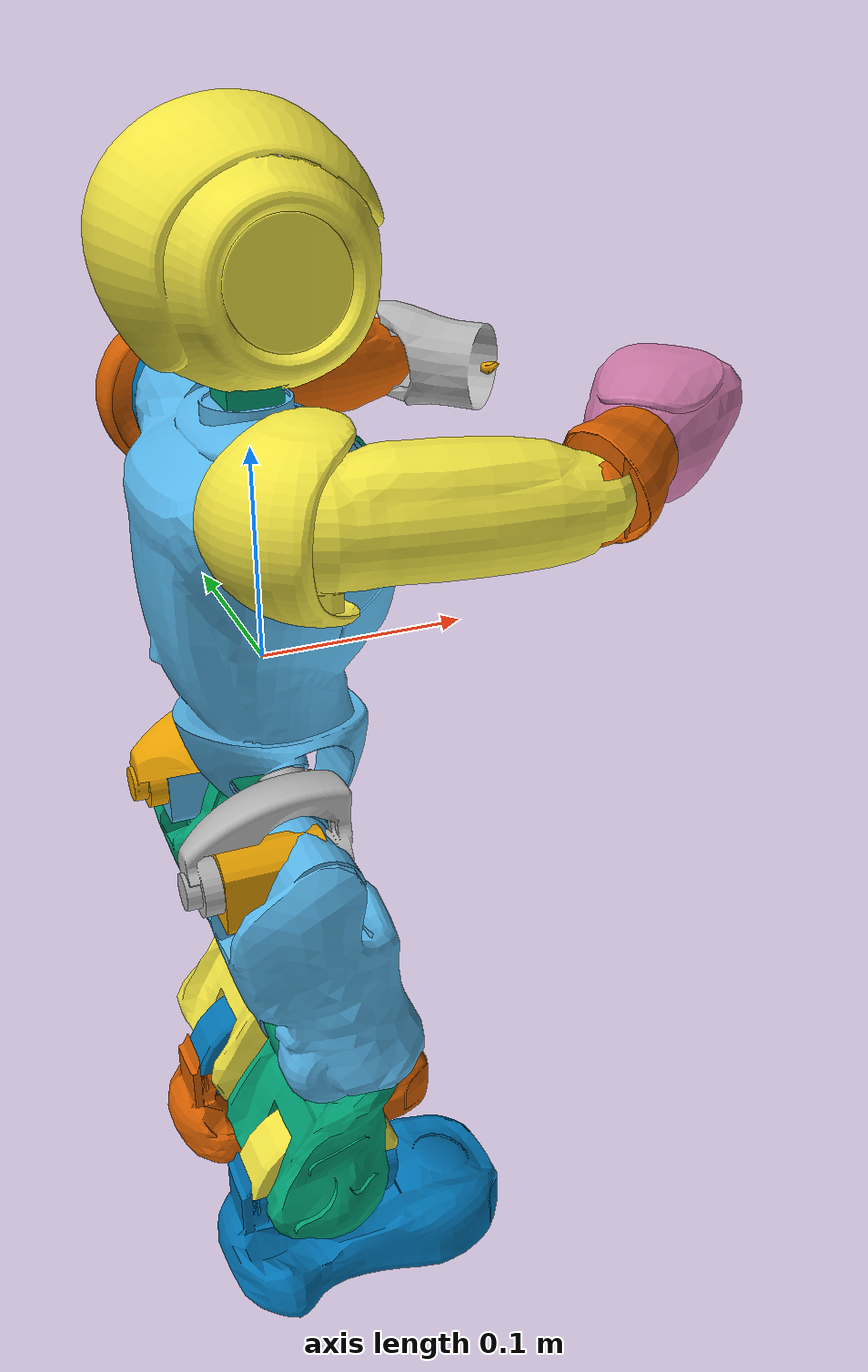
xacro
<?xml version="1.0" ?>
<robot name="NaoH25V50" xmlns:xacro="http://www.ros.org/wiki/xacro">
	<xacro:include filename="nao_visual_collisions.xacro"/>
	<xacro:include filename="nao_torso.xacro"/>
	<xacro:include filename="nao_head.xacro"/>
	<xacro:include filename="nao_arms.xacro"/>
	<xacro:include filename="nao_legs.xacro"/>
</robot>

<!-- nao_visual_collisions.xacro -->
<robot xmlns:xacro="http://www.ros.org/wiki/xacro">
	<xacro:property name="PI_2" value="1.57079632679"/>
	<xacro:property name="meshes_installed" value="true"/>
	<xacro:macro name="insert_visu_LThigh">
		<xacro:unless value="${meshes_installed}">
			<visual>
				<geometry>
					<cylinder length="0.1" radius="0.015"/>
				</geometry>
				<origin rpy="0 0 0" xyz="0 0 -0.05"/>
				<material name="LightGrey"/>
			</visual>
			<collision>
				<geometry>
					<cylinder length="0.1" radius="0.015"/>
				</geometry>
				<origin rpy="0 0 0" xyz="0 0 -0.05"/>
			</collision>
		</xacro:unless>
		<xacro:if value="${meshes_installed}">
			<visual>
				<geometry>
					<mesh filename="../meshes/V40/LHipPitch.dae" scale="0.1 0.1 0.1"/>
				</geometry>
				<origin rpy="0 0 0" xyz="0 0 0"/>
			</visual>
			<collision>
				<geometry>
					<mesh filename="../meshes/V40/LHipPitch_0.10.stl" scale="0.1 0.1 0.1"/>
				</geometry>
				<origin rpy="0 0 0" xyz="0 0 0"/>
			</collision>
		</xacro:if>
	</xacro:macro>
	<xacro:macro name="insert_visu_RFinger13_link">
		<xacro:unless value="${meshes_installed}"/>
		<xacro:if value="${meshes_installed}">
			<visual>
				<geometry>
					<mesh filename="../meshes/V40/RFinger13.dae" scale="0.1 0.1 0.1"/>
				</geometry>
				<origin rpy="0 0 0" xyz="0 0 0"/>
			</visual>
			<collision>
				<geometry>
					<mesh filename="../meshes/V40/RFinger13_0.10.stl" scale="0.1 0.1 0.1"/>
				</geometry>
				<origin rpy="0 0 0" xyz="0 0 0"/>
			</collision>
		</xacro:if>
	</xacro:macro>
	<xacro:macro name="insert_visu_RThigh">
		<xacro:unless value="${meshes_installed}">
			<visual>
				<geometry>
					<cylinder length="0.1" radius="0.015"/>
				</geometry>
				<origin rpy="0 0 0" xyz="0 0 -0.05"/>
				<material name="LightGrey"/>
			</visual>
			<collision>
				<geometry>
					<cylinder length="0.1" radius="0.015"/>
				</geometry>
				<origin rpy="0 0 0" xyz="0 0 -0.05"/>
			</collision>
		</xacro:unless>
		<xacro:if value="${meshes_installed}">
			<visual>
				<geometry>
					<mesh filename="../meshes/V40/RHipPitch.dae" scale="0.1 0.1 0.1"/>
				</geometry>
				<origin rpy="0 0 0" xyz="0 0 0"/>
			</visual>
			<collision>
				<geometry>
					<mesh filename="../meshes/V40/RHipPitch_0.10.stl" scale="0.1 0.1 0.1"/>
				</geometry>
				<origin rpy="0 0 0" xyz="0 0 0"/>
			</collision>
		</xacro:if>
	</xacro:macro>
	<xacro:macro name="insert_visu_RFinger12_link">
		<xacro:unless value="${meshes_installed}"/>
		<xacro:if value="${meshes_installed}">
			<visual>
				<geometry>
					<mesh filename="../meshes/V40/RFinger12.dae" scale="0.1 0.1 0.1"/>
				</geometry>
				<origin rpy="0 0 0" xyz="0 0 0"/>
			</visual>
			<collision>
				<geometry>
					<mesh filename="../meshes/V40/RFinger12_0.10.stl" scale="0.1 0.1 0.1"/>
				</geometry>
				<origin rpy="0 0 0" xyz="0 0 0"/>
			</collision>
		</xacro:if>
	</xacro:macro>
	<xacro:macro name="insert_visu_LFinger21_link">
		<xacro:unless value="${meshes_installed}"/>
		<xacro:if value="${meshes_installed}">
			<visual>
				<geometry>
					<mesh filename="../meshes/V40/LFinger21.dae" scale="0.1 0.1 0.1"/>
				</geometry>
				<origin rpy="0 0 0" xyz="0 0 0"/>
			</visual>
			<collision>
				<geometry>
					<mesh filename="../meshes/V40/LFinger21_0.10.stl" scale="0.1 0.1 0.1"/>
				</geometry>
				<origin rpy="0 0 0" xyz="0 0 0"/>
			</collision>
		</xacro:if>
	</xacro:macro>
	<xacro:macro name="insert_visu_LFinger13_link">
		<xacro:unless value="${meshes_installed}"/>
		<xacro:if value="${meshes_installed}">
			<visual>
				<geometry>
					<mesh filename="../meshes/V40/LFinger13.dae" scale="0.1 0.1 0.1"/>
				</geometry>
				<origin rpy="0 0 0" xyz="0 0 0"/>
			</visual>
			<collision>
				<geometry>
					<mesh filename="../meshes/V40/LFinger13_0.10.stl" scale="0.1 0.1 0.1"/>
				</geometry>
				<origin rpy="0 0 0" xyz="0 0 0"/>
			</collision>
		</xacro:if>
	</xacro:macro>
	<xacro:macro name="insert_visu_LThumb1_link">
		<xacro:unless value="${meshes_installed}"/>
		<xacro:if value="${meshes_installed}">
			<visual>
				<geometry>
					<mesh filename="../meshes/V40/LThumb1.dae" scale="0.1 0.1 0.1"/>
				</geometry>
				<origin rpy="0 0 0" xyz="0 0 0"/>
			</visual>
			<collision>
				<geometry>
					<mesh filename="../meshes/V40/LThumb1_0.10.stl" scale="0.1 0.1 0.1"/>
				</geometry>
				<origin rpy="0 0 0" xyz="0 0 0"/>
			</collision>
		</xacro:if>
	</xacro:macro>
	<xacro:macro name="insert_visu_LFinger11_link">
		<xacro:unless value="${meshes_installed}"/>
		<xacro:if value="${meshes_installed}">
			<visual>
				<geometry>
					<mesh filename="../meshes/V40/LFinger11.dae" scale="0.1 0.1 0.1"/>
				</geometry>
				<origin rpy="0 0 0" xyz="0 0 0"/>
			</visual>
			<collision>
				<geometry>
					<mesh filename="../meshes/V40/LFinger11_0.10.stl" scale="0.1 0.1 0.1"/>
				</geometry>
				<origin rpy="0 0 0" xyz="0 0 0"/>
			</collision>
		</xacro:if>
	</xacro:macro>
	<xacro:macro name="insert_visu_RFinger22_link">
		<xacro:unless value="${meshes_installed}"/>
		<xacro:if value="${meshes_installed}">
			<visual>
				<geometry>
					<mesh filename="../meshes/V40/RFinger22.dae" scale="0.1 0.1 0.1"/>
				</geometry>
				<origin rpy="0 0 0" xyz="0 0 0"/>
			</visual>
			<collision>
				<geometry>
					<mesh filename="../meshes/V40/RFinger22_0.10.stl" scale="0.1 0.1 0.1"/>
				</geometry>
				<origin rpy="0 0 0" xyz="0 0 0"/>
			</collision>
		</xacro:if>
	</xacro:macro>
	<xacro:macro name="insert_visu_Head">
		<xacro:unless value="${meshes_installed}">
			<visual>
				<geometry>
					<cylinder length="0.14" radius="0.04"/>
				</geometry>
				<origin rpy="1.57079632679 0 0" xyz="0 0 0.058"/>
				<material name="LightGrey"/>
			</visual>
			<collision>
				<geometry>
					<cylinder length="0.14" radius="0.04"/>
				</geometry>
				<origin rpy="1.57079632679 0 0" xyz="0 0 0.058"/>
			</collision>
		</xacro:unless>
		<xacro:if value="${meshes_installed}">
			<visual>
				<geometry>
					<mesh filename="../meshes/V40/HeadPitch.dae" scale="0.1 0.1 0.1"/>
				</geometry>
				<origin rpy="0 0 0" xyz="0 0 0"/>
			</visual>
			<collision>
				<geometry>
					<mesh filename="../meshes/V40/HeadPitch_0.10.stl" scale="0.1 0.1 0.1"/>
				</geometry>
				<origin rpy="0 0 0" xyz="0 0 0"/>
			</collision>
		</xacro:if>
	</xacro:macro>
	<xacro:macro name="insert_visu_LFinger22_link">
		<xacro:unless value="${meshes_installed}"/>
		<xacro:if value="${meshes_installed}">
			<visual>
				<geometry>
					<mesh filename="../meshes/V40/LFinger22.dae" scale="0.1 0.1 0.1"/>
				</geometry>
				<origin rpy="0 0 0" xyz="0 0 0"/>
			</visual>
			<collision>
				<geometry>
					<mesh filename="../meshes/V40/LFinger22_0.10.stl" scale="0.1 0.1 0.1"/>
				</geometry>
				<origin rpy="0 0 0" xyz="0 0 0"/>
			</collision>
		</xacro:if>
	</xacro:macro>
	<xacro:macro name="insert_visu_RFinger21_link">
		<xacro:unless value="${meshes_installed}"/>
		<xacro:if value="${meshes_installed}">
			<visual>
				<geometry>
					<mesh filename="../meshes/V40/RFinger21.dae" scale="0.1 0.1 0.1"/>
				</geometry>
				<origin rpy="0 0 0" xyz="0 0 0"/>
			</visual>
			<collision>
				<geometry>
					<mesh filename="../meshes/V40/RFinger21_0.10.stl" scale="0.1 0.1 0.1"/>
				</geometry>
				<origin rpy="0 0 0" xyz="0 0 0"/>
			</collision>
		</xacro:if>
	</xacro:macro>
	<xacro:macro name="insert_visu_LBicep">
		<xacro:unless value="${meshes_installed}">
			<visual>
				<geometry>
					<cylinder length="0.09" radius="0.015"/>
				</geometry>
				<origin rpy="1.57079632679 0 1.57079632679" xyz="0.045 0 0"/>
				<material name="LightGrey"/>
			</visual>
			<collision>
				<geometry>
					<cylinder length="0.09" radius="0.015"/>
				</geometry>
				<origin rpy="1.57079632679 0 1.57079632679" xyz="0.045 0 0"/>
			</collision>
		</xacro:unless>
		<xacro:if value="${meshes_installed}">
			<visual>
				<geometry>
					<mesh filename="../meshes/V40/LShoulderRoll.dae" scale="0.1 0.1 0.1"/>
				</geometry>
				<origin rpy="0 0 0" xyz="0 0 0"/>
			</visual>
			<collision>
				<geometry>
					<mesh filename="../meshes/V40/LShoulderRoll_0.10.stl" scale="0.1 0.1 0.1"/>
				</geometry>
				<origin rpy="0 0 0" xyz="0 0 0"/>
			</collision>
		</xacro:if>
	</xacro:macro>
	<xacro:macro name="insert_visu_RThumb1_link">
		<xacro:unless value="${meshes_installed}"/>
		<xacro:if value="${meshes_installed}">
			<visual>
				<geometry>
					<mesh filename="../meshes/V40/RThumb1.dae" scale="0.1 0.1 0.1"/>
				</geometry>
				<origin rpy="0 0 0" xyz="0 0 0"/>
			</visual>
			<collision>
				<geometry>
					<mesh filename="../meshes/V40/RThumb1_0.10.stl" scale="0.1 0.1 0.1"/>
				</geometry>
				<origin rpy="0 0 0" xyz="0 0 0"/>
			</collision>
		</xacro:if>
	</xacro:macro>
	<xacro:macro name="insert_visu_RThumb2_link">
		<xacro:unless value="${meshes_installed}"/>
		<xacro:if value="${meshes_installed}">
			<visual>
				<geometry>
					<mesh filename="../meshes/V40/RThumb2.dae" scale="0.1 0.1 0.1"/>
				</geometry>
				<origin rpy="0 0 0" xyz="0 0 0"/>
			</visual>
			<collision>
				<geometry>
					<mesh filename="../meshes/V40/RThumb2_0.10.stl" scale="0.1 0.1 0.1"/>
				</geometry>
				<origin rpy="0 0 0" xyz="0 0 0"/>
			</collision>
		</xacro:if>
	</xacro:macro>
	<xacro:macro name="insert_visu_r_wrist">
		<xacro:unless value="${meshes_installed}">
			<visual>
				<geometry>
					<cylinder length="0.058" radius="0.015"/>
				</geometry>
				<origin rpy="1.57079632679 0 1.57079632679" xyz="0.029 0 0"/>
				<material name="LightGrey"/>
			</visual>
			<collision>
				<geometry>
					<cylinder length="0.058" radius="0.015"/>
				</geometry>
				<origin rpy="1.57079632679 0 1.57079632679" xyz="0.029 0 0"/>
			</collision>
		</xacro:unless>
		<xacro:if value="${meshes_installed}">
			<visual>
				<geometry>
					<mesh filename="../meshes/V40/RWristYaw.dae" scale="0.1 0.1 0.1"/>
				</geometry>
				<origin rpy="0 0 0" xyz="0 0 0"/>
			</visual>
			<collision>
				<geometry>
					<mesh filename="../meshes/V40/RWristYaw_0.10.stl" scale="0.1 0.1 0.1"/>
				</geometry>
				<origin rpy="0 0 0" xyz="0 0 0"/>
			</collision>
		</xacro:if>
	</xacro:macro>
	<xacro:macro name="insert_visu_LForeArm">
		<xacro:unless value="${meshes_installed}">
			<visual>
				<geometry>
					<cylinder length="0.05065" radius="0.015"/>
				</geometry>
				<origin rpy="1.57079632679 0 1.57079632679" xyz="0.025325 0 0"/>
				<material name="LightGrey"/>
			</visual>
			<collision>
				<geometry>
					<cylinder length="0.05065" radius="0.015"/>
				</geometry>
				<origin rpy="1.57079632679 0 1.57079632679" xyz="0.025325 0 0"/>
			</collision>
		</xacro:unless>
		<xacro:if value="${meshes_installed}">
			<visual>
				<geometry>
					<mesh filename="../meshes/V40/LElbowRoll.dae" scale="0.1 0.1 0.1"/>
				</geometry>
				<origin rpy="0 0 0" xyz="0 0 0"/>
			</visual>
			<collision>
				<geometry>
					<mesh filename="../meshes/V40/LElbowRoll_0.10.stl" scale="0.1 0.1 0.1"/>
				</geometry>
				<origin rpy="0 0 0" xyz="0 0 0"/>
			</collision>
		</xacro:if>
	</xacro:macro>
	<xacro:macro name="insert_visu_RHip">
		<xacro:unless value="${meshes_installed}"/>
		<xacro:if value="${meshes_installed}">
			<visual>
				<geometry>
					<mesh filename="../meshes/V40/RHipRoll.dae" scale="0.1 0.1 0.1"/>
				</geometry>
				<origin rpy="0 0 0" xyz="0 0 0"/>
			</visual>
			<collision>
				<geometry>
					<mesh filename="../meshes/V40/RHipRoll_0.10.stl" scale="0.1 0.1 0.1"/>
				</geometry>
				<origin rpy="0 0 0" xyz="0 0 0"/>
			</collision>
		</xacro:if>
	</xacro:macro>
	<xacro:macro name="insert_visu_LThumb2_link">
		<xacro:unless value="${meshes_installed}"/>
		<xacro:if value="${meshes_installed}">
			<visual>
				<geometry>
					<mesh filename="../meshes/V40/LThumb2.dae" scale="0.1 0.1 0.1"/>
				</geometry>
				<origin rpy="0 0 0" xyz="0 0 0"/>
			</visual>
			<collision>
				<geometry>
					<mesh filename="../meshes/V40/LThumb2_0.10.stl" scale="0.1 0.1 0.1"/>
				</geometry>
				<origin rpy="0 0 0" xyz="0 0 0"/>
			</collision>
		</xacro:if>
	</xacro:macro>
	<xacro:macro name="insert_visu_LFinger12_link">
		<xacro:unless value="${meshes_installed}"/>
		<xacro:if value="${meshes_installed}">
			<visual>
				<geometry>
					<mesh filename="../meshes/V40/LFinger12.dae" scale="0.1 0.1 0.1"/>
				</geometry>
				<origin rpy="0 0 0" xyz="0 0 0"/>
			</visual>
			<collision>
				<geometry>
					<mesh filename="../meshes/V40/LFinger12_0.10.stl" scale="0.1 0.1 0.1"/>
				</geometry>
				<origin rpy="0 0 0" xyz="0 0 0"/>
			</collision>
		</xacro:if>
	</xacro:macro>
	<xacro:macro name="insert_visu_RTibia">
		<xacro:unless value="${meshes_installed}">
			<visual>
				<geometry>
					<cylinder length="0.1" radius="0.015"/>
				</geometry>
				<origin rpy="0 0 0" xyz="0 0 -0.05"/>
				<material name="LightGrey"/>
			</visual>
			<collision>
				<geometry>
					<cylinder length="0.1" radius="0.015"/>
				</geometry>
				<origin rpy="0 0 0" xyz="0 0 -0.05"/>
			</collision>
		</xacro:unless>
		<xacro:if value="${meshes_installed}">
			<visual>
				<geometry>
					<mesh filename="../meshes/V40/RKneePitch.dae" scale="0.1 0.1 0.1"/>
				</geometry>
				<origin rpy="0 0 0" xyz="0 0 0"/>
			</visual>
			<collision>
				<geometry>
					<mesh filename="../meshes/V40/RKneePitch_0.10.stl" scale="0.1 0.1 0.1"/>
				</geometry>
				<origin rpy="0 0 0" xyz="0 0 0"/>
			</collision>
		</xacro:if>
	</xacro:macro>
	<xacro:macro name="insert_visu_RShoulder">
		<xacro:unless value="${meshes_installed}"/>
		<xacro:if value="${meshes_installed}">
			<visual>
				<geometry>
					<mesh filename="../meshes/V40/RShoulderPitch.dae" scale="0.1 0.1 0.1"/>
				</geometry>
				<origin rpy="0 0 0" xyz="0 0 0"/>
			</visual>
			<collision>
				<geometry>
					<mesh filename="../meshes/V40/RShoulderPitch_0.10.stl" scale="0.1 0.1 0.1"/>
				</geometry>
				<origin rpy="0 0 0" xyz="0 0 0"/>
			</collision>
		</xacro:if>
	</xacro:macro>
	<xacro:macro name="insert_visu_LHip">
		<xacro:unless value="${meshes_installed}"/>
		<xacro:if value="${meshes_installed}">
			<visual>
				<geometry>
					<mesh filename="../meshes/V40/LHipRoll.dae" scale="0.1 0.1 0.1"/>
				</geometry>
				<origin rpy="0 0 0" xyz="0 0 0"/>
			</visual>
			<collision>
				<geometry>
					<mesh filename="../meshes/V40/LHipRoll_0.10.stl" scale="0.1 0.1 0.1"/>
				</geometry>
				<origin rpy="0 0 0" xyz="0 0 0"/>
			</collision>
		</xacro:if>
	</xacro:macro>
	<xacro:macro name="insert_visu_RFinger23_link">
		<xacro:unless value="${meshes_installed}"/>
		<xacro:if value="${meshes_installed}">
			<visual>
				<geometry>
					<mesh filename="../meshes/V40/RFinger23.dae" scale="0.1 0.1 0.1"/>
				</geometry>
				<origin rpy="0 0 0" xyz="0 0 0"/>
			</visual>
			<collision>
				<geometry>
					<mesh filename="../meshes/V40/RFinger23_0.10.stl" scale="0.1 0.1 0.1"/>
				</geometry>
				<origin rpy="0 0 0" xyz="0 0 0"/>
			</collision>
		</xacro:if>
	</xacro:macro>
	<xacro:macro name="insert_visu_LHand">
		<xacro:unless value="${meshes_installed}">
			<visual>
				<geometry>
					<cylinder length="0.058" radius="0.015"/>
				</geometry>
				<origin rpy="1.57079632679 0 1.57079632679" xyz="0.029 0 0"/>
				<material name="LightGrey"/>
			</visual>
			<collision>
				<geometry>
					<cylinder length="0.058" radius="0.015"/>
				</geometry>
				<origin rpy="1.57079632679 0 1.57079632679" xyz="0.029 0 0"/>
			</collision>
		</xacro:unless>
		<xacro:if value="${meshes_installed}">
			<visual>
				<geometry>
					<mesh filename="../meshes/V40/LWristYaw.dae" scale="0.1 0.1 0.1"/>
				</geometry>
				<origin rpy="0 0 0" xyz="0 0 0"/>
			</visual>
			<collision>
				<geometry>
					<mesh filename="../meshes/V40/LWristYaw_0.10.stl" scale="0.1 0.1 0.1"/>
				</geometry>
				<origin rpy="0 0 0" xyz="0 0 0"/>
			</collision>
		</xacro:if>
	</xacro:macro>
	<xacro:macro name="insert_visu_RBicep">
		<xacro:unless value="${meshes_installed}">
			<visual>
				<geometry>
					<cylinder length="0.09" radius="0.015"/>
				</geometry>
				<origin rpy="1.57079632679 0 1.57079632679" xyz="0.045 0 0"/>
				<material name="LightGrey"/>
			</visual>
			<collision>
				<geometry>
					<cylinder length="0.09" radius="0.015"/>
				</geometry>
				<origin rpy="1.57079632679 0 1.57079632679" xyz="0.045 0 0"/>
			</collision>
		</xacro:unless>
		<xacro:if value="${meshes_installed}">
			<visual>
				<geometry>
					<mesh filename="../meshes/V40/RShoulderRoll.dae" scale="0.1 0.1 0.1"/>
				</geometry>
				<origin rpy="0 0 0" xyz="0 0 0"/>
			</visual>
			<collision>
				<geometry>
					<mesh filename="../meshes/V40/RShoulderRoll_0.10.stl" scale="0.1 0.1 0.1"/>
				</geometry>
				<origin rpy="0 0 0" xyz="0 0 0"/>
			</collision>
		</xacro:if>
	</xacro:macro>
	<xacro:macro name="insert_visu_RFinger11_link">
		<xacro:unless value="${meshes_installed}"/>
		<xacro:if value="${meshes_installed}">
			<visual>
				<geometry>
					<mesh filename="../meshes/V40/RFinger11.dae" scale="0.1 0.1 0.1"/>
				</geometry>
				<origin rpy="0 0 0" xyz="0 0 0"/>
			</visual>
			<collision>
				<geometry>
					<mesh filename="../meshes/V40/RFinger11_0.10.stl" scale="0.1 0.1 0.1"/>
				</geometry>
				<origin rpy="0 0 0" xyz="0 0 0"/>
			</collision>
		</xacro:if>
	</xacro:macro>
	<xacro:macro name="insert_visu_LFinger23_link">
		<xacro:unless value="${meshes_installed}"/>
		<xacro:if value="${meshes_installed}">
			<visual>
				<geometry>
					<mesh filename="../meshes/V40/LFinger23.dae" scale="0.1 0.1 0.1"/>
				</geometry>
				<origin rpy="0 0 0" xyz="0 0 0"/>
			</visual>
			<collision>
				<geometry>
					<mesh filename="../meshes/V40/LFinger23_0.10.stl" scale="0.1 0.1 0.1"/>
				</geometry>
				<origin rpy="0 0 0" xyz="0 0 0"/>
			</collision>
		</xacro:if>
	</xacro:macro>
	<xacro:macro name="insert_visu_LTibia">
		<xacro:unless value="${meshes_installed}">
			<visual>
				<geometry>
					<cylinder length="0.1" radius="0.015"/>
				</geometry>
				<origin rpy="0 0 0" xyz="0 0 -0.05"/>
				<material name="LightGrey"/>
			</visual>
			<collision>
				<geometry>
					<cylinder length="0.1" radius="0.015"/>
				</geometry>
				<origin rpy="0 0 0" xyz="0 0 -0.05"/>
			</collision>
		</xacro:unless>
		<xacro:if value="${meshes_installed}">
			<visual>
				<geometry>
					<mesh filename="../meshes/V40/LKneePitch.dae" scale="0.1 0.1 0.1"/>
				</geometry>
				<origin rpy="0 0 0" xyz="0 0 0"/>
			</visual>
			<collision>
				<geometry>
					<mesh filename="../meshes/V40/LKneePitch_0.10.stl" scale="0.1 0.1 0.1"/>
				</geometry>
				<origin rpy="0 0 0" xyz="0 0 0"/>
			</collision>
		</xacro:if>
	</xacro:macro>
	<xacro:macro name="insert_visu_Neck">
		<xacro:unless value="${meshes_installed}"/>
		<xacro:if value="${meshes_installed}">
			<visual>
				<geometry>
					<mesh filename="../meshes/V40/HeadYaw.dae" scale="0.1 0.1 0.1"/>
				</geometry>
				<origin rpy="0 0 0" xyz="0 0 0"/>
			</visual>
			<collision>
				<geometry>
					<mesh filename="../meshes/V40/HeadYaw_0.10.stl" scale="0.1 0.1 0.1"/>
				</geometry>
				<origin rpy="0 0 0" xyz="0 0 0"/>
			</collision>
		</xacro:if>
	</xacro:macro>
	<xacro:macro name="insert_visu_LAnklePitch">
		<xacro:unless value="${meshes_installed}"/>
		<xacro:if value="${meshes_installed}">
			<visual>
				<geometry>
					<mesh filename="../meshes/V40/LAnklePitch.dae" scale="0.1 0.1 0.1"/>
				</geometry>
				<origin rpy="0 0 0" xyz="0 0 0"/>
			</visual>
			<collision>
				<geometry>
					<mesh filename="../meshes/V40/LAnklePitch_0.10.stl" scale="0.1 0.1 0.1"/>
				</geometry>
				<origin rpy="0 0 0" xyz="0 0 0"/>
			</collision>
		</xacro:if>
	</xacro:macro>
	<xacro:macro name="insert_visu_RPelvis">
		<xacro:unless value="${meshes_installed}"/>
		<xacro:if value="${meshes_installed}">
			<visual>
				<geometry>
					<mesh filename="../meshes/V40/RHipYawPitch.dae" scale="0.1 0.1 0.1"/>
				</geometry>
				<origin rpy="0 0 0" xyz="0 0 0"/>
			</visual>
			<collision>
				<geometry>
					<mesh filename="../meshes/V40/RHipYawPitch_0.10.stl" scale="0.1 0.1 0.1"/>
				</geometry>
				<origin rpy="0 0 0" xyz="0 0 0"/>
			</collision>
		</xacro:if>
	</xacro:macro>
	<xacro:macro name="insert_visu_RAnklePitch">
		<xacro:unless value="${meshes_installed}"/>
		<xacro:if value="${meshes_installed}">
			<visual>
				<geometry>
					<mesh filename="../meshes/V40/RAnklePitch.dae" scale="0.1 0.1 0.1"/>
				</geometry>
				<origin rpy="0 0 0" xyz="0 0 0"/>
			</visual>
			<collision>
				<geometry>
					<mesh filename="../meshes/V40/RAnklePitch_0.10.stl" scale="0.1 0.1 0.1"/>
				</geometry>
				<origin rpy="0 0 0" xyz="0 0 0"/>
			</collision>
		</xacro:if>
	</xacro:macro>
	<xacro:macro name="insert_visu_torso">
		<xacro:unless value="${meshes_installed}">
			<visual>
				<geometry>
					<cylinder length="0.2115" radius="0.015"/>
				</geometry>
				<origin rpy="0 0 0" xyz="0 0 0.02075"/>
				<material name="LightGrey"/>
			</visual>
			<collision>
				<geometry>
					<cylinder length="0.2115" radius="0.015"/>
				</geometry>
				<origin rpy="0 0 0" xyz="0 0 0.02075"/>
			</collision>
		</xacro:unless>
		<xacro:if value="${meshes_installed}">
			<visual>
				<geometry>
					<mesh filename="../meshes/V40/Torso.dae" scale="0.1 0.1 0.1"/>
				</geometry>
				<origin rpy="0 0 0" xyz="0 0 0"/>
			</visual>
			<collision>
				<geometry>
					<mesh filename="../meshes/V40/Torso_0.10.stl" scale="0.1 0.1 0.1"/>
				</geometry>
				<origin rpy="0 0 0" xyz="0 0 0"/>
			</collision>
		</xacro:if>
	</xacro:macro>
	<xacro:macro name="insert_visu_r_ankle">
		<xacro:unless value="${meshes_installed}">
			<visual>
				<geometry>
					<box size="0.16 0.06 0.015"/>
				</geometry>
				<origin rpy="0 0 0" xyz="0.02 0 0.0075"/>
				<material name="LightGrey"/>
			</visual>
			<collision>
				<geometry>
					<box size="0.16 0.06 0.015"/>
				</geometry>
				<origin rpy="0 0 0" xyz="0.02 0 0.0075"/>
			</collision>
		</xacro:unless>
		<xacro:if value="${meshes_installed}">
			<visual>
				<geometry>
					<mesh filename="../meshes/V40/RAnkleRoll.dae" scale="0.1 0.1 0.1"/>
				</geometry>
				<origin rpy="0 0 0" xyz="0 0 0"/>
			</visual>
			<collision>
				<geometry>
					<mesh filename="../meshes/V40/RAnkleRoll_0.10.stl" scale="0.1 0.1 0.1"/>
				</geometry>
				<origin rpy="0 0 0" xyz="0 0 0"/>
			</collision>
		</xacro:if>
	</xacro:macro>
	<xacro:macro name="insert_visu_l_ankle">
		<xacro:unless value="${meshes_installed}">
			<visual>
				<geometry>
					<box size="0.16 0.06 0.015"/>
				</geometry>
				<origin rpy="0 0 0" xyz="0.02 0 0.0075"/>
				<material name="LightGrey"/>
			</visual>
			<collision>
				<geometry>
					<box size="0.16 0.06 0.015"/>
				</geometry>
				<origin rpy="0 0 0" xyz="0.02 0 0.0075"/>
			</collision>
		</xacro:unless>
		<xacro:if value="${meshes_installed}">
			<visual>
				<geometry>
					<mesh filename="../meshes/V40/LAnkleRoll.dae" scale="0.1 0.1 0.1"/>
				</geometry>
				<origin rpy="0 0 0" xyz="0 0 0"/>
			</visual>
			<collision>
				<geometry>
					<mesh filename="../meshes/V40/LAnkleRoll_0.10.stl" scale="0.1 0.1 0.1"/>
				</geometry>
				<origin rpy="0 0 0" xyz="0 0 0"/>
			</collision>
		</xacro:if>
	</xacro:macro>
	<xacro:macro name="insert_visu_RForeArm">
		<xacro:unless value="${meshes_installed}">
			<visual>
				<geometry>
					<cylinder length="0.05065" radius="0.015"/>
				</geometry>
				<origin rpy="1.57079632679 0 1.57079632679" xyz="0.025325 0 0"/>
				<material name="LightGrey"/>
			</visual>
			<collision>
				<geometry>
					<cylinder length="0.05065" radius="0.015"/>
				</geometry>
				<origin rpy="1.57079632679 0 1.57079632679" xyz="0.025325 0 0"/>
			</collision>
		</xacro:unless>
		<xacro:if value="${meshes_installed}">
			<visual>
				<geometry>
					<mesh filename="../meshes/V40/RElbowRoll.dae" scale="0.1 0.1 0.1"/>
				</geometry>
				<origin rpy="0 0 0" xyz="0 0 0"/>
			</visual>
			<collision>
				<geometry>
					<mesh filename="../meshes/V40/RElbowRoll_0.10.stl" scale="0.1 0.1 0.1"/>
				</geometry>
				<origin rpy="0 0 0" xyz="0 0 0"/>
			</collision>
		</xacro:if>
	</xacro:macro>
	<xacro:macro name="insert_visu_LShoulder">
		<xacro:unless value="${meshes_installed}"/>
		<xacro:if value="${meshes_installed}">
			<visual>
				<geometry>
					<mesh filename="../meshes/V40/LShoulderPitch.dae" scale="0.1 0.1 0.1"/>
				</geometry>
				<origin rpy="0 0 0" xyz="0 0 0"/>
			</visual>
			<collision>
				<geometry>
					<mesh filename="../meshes/V40/LShoulderPitch_0.10.stl" scale="0.1 0.1 0.1"/>
				</geometry>
				<origin rpy="0 0 0" xyz="0 0 0"/>
			</collision>
		</xacro:if>
	</xacro:macro>
	<xacro:macro name="insert_visu_LPelvis">
		<xacro:unless value="${meshes_installed}"/>
		<xacro:if value="${meshes_installed}">
			<visual>
				<geometry>
					<mesh filename="../meshes/V40/LHipYawPitch.dae" scale="0.1 0.1 0.1"/>
				</geometry>
				<origin rpy="0 0 0" xyz="0 0 0"/>
			</visual>
			<collision>
				<geometry>
					<mesh filename="../meshes/V40/LHipYawPitch_0.10.stl" scale="0.1 0.1 0.1"/>
				</geometry>
				<origin rpy="0 0 0" xyz="0 0 0"/>
			</collision>
		</xacro:if>
	</xacro:macro>
</robot>

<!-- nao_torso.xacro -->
<robot xmlns:xacro="http://www.ros.org/wiki/xacro">

    <link name="base_link"/>

    <joint name="TorsoJoint" type="fixed">
        <parent link="base_link"/>
        <child link="Torso"/>
        <origin rpy="0 0 0" xyz="0 0 0"/>
    </joint>

	<link name="Torso">
		<inertial>
			<mass value="1.04956"/>
			<inertia ixx="0.00308361" ixy="1.43116e-05" ixz="-3.30211e-05" iyy="0.0028835" iyz="-2.70793e-05" izz="0.0015924"/>
			<origin rpy="0 0 0" xyz="-0.00413 0 0.04342"/>
		</inertial>
		<xacro:insert_visu_torso/>
	</link>

</robot>

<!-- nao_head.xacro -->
<robot xmlns:xacro="http://www.ros.org/wiki/xacro">
	<joint name="HeadYaw" type="revolute">
		<parent link="Torso"/>
		<child link="Neck"/>
		<origin rpy="0 0 0" xyz="0 0 0.1265"/>
		<axis xyz="0 0 1.0"/>
		<limit effort="1.547" lower="-2.08567" upper="2.08567" velocity="8.26797"/>
	</joint>
	<link name="Neck">
		<inertial>
			<mass value="0.07842"/>
			<inertia ixx="1.60324e-05" ixy="1.57e-09" ixz="3.16276e-09" iyy="1.70394e-05" iyz="-5.295e-08" izz="5.53372e-06"/>
			<origin rpy="0 0 0" xyz="-1e-05 0 -0.02742"/>
		</inertial>
		<xacro:insert_visu_Neck/>
	</link>
	<joint name="HeadPitch" type="revolute">
		<parent link="Neck"/>
		<child link="Head"/>
		<origin rpy="0 0 0" xyz="0 0 0"/>
		<axis xyz="0 1.0 0"/>
		<limit effort="1.532" lower="-0.671952" upper="0.514872" velocity="7.19407"/>
	</joint>
	<link name="Head">
		<inertial>
			<mass value="0.60533"/>
			<inertia ixx="0.000957766" ixy="8.78814e-06" ixz="5.33702e-06" iyy="0.000816836" iyz="-2.99579e-05" izz="0.000984976"/>
			<origin rpy="0 0 0" xyz="-0.00112 0 0.05258"/>
		</inertial>
		<xacro:insert_visu_Head/>
	</link>
</robot>

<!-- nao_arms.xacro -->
<robot xmlns:xacro="http://www.ros.org/wiki/xacro">
	<joint name="LShoulderPitch" type="revolute">
		<parent link="Torso"/>
		<child link="LShoulder"/>
		<origin rpy="0 0 0" xyz="0 0.098 0.1"/>
		<axis xyz="0 1.0 0"/>
		<limit effort="1.329" lower="-2.08567" upper="2.08567" velocity="8.26797"/>
	</joint>
	<link name="LShoulder">
		<inertial>
			<mass value="0.09304"/>
			<inertia ixx="1.83025e-05" ixy="2.06011e-06" ixz="1.88776e-09" iyy="1.39005e-05" iyz="-3.66592e-07" izz="2.01862e-05"/>
			<origin rpy="0 0 0" xyz="-0.00165 -0.02663 0.00014"/>
		</inertial>
		<xacro:insert_visu_LShoulder/>
	</link>
	<joint name="LShoulderRoll" type="revolute">
		<parent link="LShoulder"/>
		<child link="LBicep"/>
		<origin rpy="0 0 0" xyz="0 0 0"/>
		<axis xyz="0 0 1.0"/>
		<limit effort="1.7835" lower="-0.314159" upper="1.32645" velocity="7.19407"/>
	</joint>
	<link name="LBicep">
		<inertial>
			<mass value="0.15777"/>
			<inertia ixx="8.7181e-05" ixy="-2.53381e-05" ixz="-1.4213e-05" iyy="0.000274712" iyz="4.71439e-07" izz="0.000241812"/>
			<origin rpy="0 0 0" xyz="0.02455 0.00563 0.0033"/>
		</inertial>
		<xacro:insert_visu_LBicep/>
	</link>
	<joint name="LElbowYaw" type="revolute">
		<parent link="LBicep"/>
		<child link="LElbow"/>
		<origin rpy="0 0 0" xyz="0.105 0.015 0"/>
		<axis xyz="1.0 0 0"/>
		<limit effort="1.547" lower="-2.08567" upper="2.08567" velocity="8.26797"/>
	</joint>
	<link name="LElbow">
		<inertial>
			<mass value="0.06483"/>
			<inertia ixx="5.59588e-06" ixy="4.21e-09" ixz="2.92241e-07" iyy="2.66179e-05" iyz="-1.84e-09" izz="2.76294e-05"/>
			<origin rpy="0 0 0" xyz="-0.02744 0 -0.00014"/>
		</inertial>
	</link>
	<joint name="LElbowRoll" type="revolute">
		<parent link="LElbow"/>
		<child link="LForeArm"/>
		<origin rpy="0 0 0" xyz="0 0 0"/>
		<axis xyz="0 0 1.0"/>
		<limit effort="1.532" lower="-1.54462" upper="-0.0349066" velocity="7.19407"/>
	</joint>
	<link name="LForeArm">
		<inertial>
			<mass value="0.07761"/>
			<inertia ixx="2.46746e-05" ixy="3.23152e-06" ixz="1.58221e-06" iyy="3.83837e-05" iyz="1.39194e-07" izz="3.59708e-05"/>
			<origin rpy="0 0 0" xyz="0.02556 0.00281 0.00076"/>
		</inertial>
		<xacro:insert_visu_LForeArm/>
	</link>
	<joint name="LWristYaw" type="revolute">
		<parent link="LForeArm"/>
		<child link="LHandLink"/>
		<origin rpy="0 0 0" xyz="0.05595 0 0"/>
		<axis xyz="1.0 0 0"/>
		<limit effort="0.4075" lower="-1.82387" upper="1.82387" velocity="24.6229"/>
	</joint>
	<link name="LHandLink">
		<inertial>
			<mass value="0.18533"/>
			<inertia ixx="6.86477e-05" ixy="1.15465e-07" ixz="-2.87254e-06" iyy="0.000135756" iyz="2.67539e-06" izz="0.000133228"/>
			<origin rpy="0 0 0" xyz="0.03434 -0.00088 0.00308"/>
		</inertial>
		<xacro:insert_visu_LHand/>
	</link>
	<joint name="LHand" type="revolute">
		<parent link="LHandLink"/>
		<child link="l_gripper"/>
		<origin rpy="0 0 0" xyz="0.05775 0 -0.01231"/>
		<axis xyz="1.0 0 0"/>
		<limit effort="0.292" lower="0" upper="1.0" velocity="8.33"/>
	</joint>
	<link name="l_gripper">
		<inertial>
			<mass value="2e-06"/>
			<inertia ixx="1.1e-09" ixy="0" ixz="0" iyy="1.1e-09" iyz="0" izz="1.1e-09"/>
		</inertial>
	</link>
	<joint name="RShoulderPitch" type="revolute">
		<parent link="Torso"/>
		<child link="RShoulder"/>
		<origin rpy="0 0 0" xyz="0 -0.098 0.1"/>
		<axis xyz="0 1.0 0"/>
		<limit effort="1.329" lower="-2.08567" upper="2.08567" velocity="8.26797"/>
	</joint>
	<link name="RShoulder">
		<inertial>
			<mass value="0.09304"/>
			<inertia ixx="1.83025e-05" ixy="-2.06011e-06" ixz="1.88776e-09" iyy="1.39005e-05" iyz="3.66592e-07" izz="2.01862e-05"/>
			<origin rpy="0 0 0" xyz="-0.00165 0.02663 0.00014"/>
		</inertial>
		<xacro:insert_visu_RShoulder/>
	</link>
	<joint name="RShoulderRoll" type="revolute">
		<parent link="RShoulder"/>
		<child link="RBicep"/>
		<origin rpy="0 0 0" xyz="0 0 0"/>
		<axis xyz="0 0 1.0"/>
		<limit effort="1.783" lower="-1.32645" upper="0.314159" velocity="7.19407"/>
	</joint>
	<link name="RBicep">
		<inertial>
			<mass value="0.15777"/>
			<inertia ixx="0.000103401" ixy="5.48849e-05" ixz="-1.32643e-05" iyy="0.00027077" iyz="9.16707e-06" izz="0.000254529"/>
			<origin rpy="0 0 0" xyz="0.02455 -0.00563 0.0033"/>
		</inertial>
		<xacro:insert_visu_RBicep/>
	</link>
	<joint name="RElbowYaw" type="revolute">
		<parent link="RBicep"/>
		<child link="RElbow"/>
		<origin rpy="0 0 0" xyz="0.105 -0.015 0"/>
		<axis xyz="1.0 0 0"/>
		<limit effort="1.547" lower="-2.08567" upper="2.08567" velocity="8.26797"/>
	</joint>
	<link name="RElbow">
		<inertial>
			<mass value="0.06483"/>
			<inertia ixx="5.59588e-06" ixy="4.21e-09" ixz="2.92241e-07" iyy="2.66179e-05" iyz="-1.84e-09" izz="2.76294e-05"/>
			<origin rpy="0 0 0" xyz="-0.02744 0 -0.00014"/>
		</inertial>
	</link>
	<joint name="RElbowRoll" type="revolute">
		<parent link="RElbow"/>
		<child link="RForeArm"/>
		<origin rpy="0 0 0" xyz="0 0 0"/>
		<axis xyz="0 0 1.0"/>
		<limit effort="1.532" lower="0.0349066" upper="1.54462" velocity="7.19407"/>
	</joint>
	<link name="RForeArm">
		<inertial>
			<mass value="0.07761"/>
			<inertia ixx="2.47331e-05" ixy="-3.2418e-06" ixz="9.06451e-07" iyy="3.84719e-05" iyz="-1.38804e-07" izz="3.59319e-05"/>
			<origin rpy="0 0 0" xyz="0.02556 -0.00281 0.00076"/>
		</inertial>
		<xacro:insert_visu_RForeArm/>
	</link>
	<joint name="RWristYaw" type="revolute">
		<parent link="RForeArm"/>
		<child link="RHandLink"/>
		<origin rpy="0 0 0" xyz="0.05595 0 0"/>
		<axis xyz="1.0 0 0"/>
		<limit effort="0.4075" lower="-1.82387" upper="1.82387" velocity="24.6229"/>
	</joint>
	<link name="RHandLink">
		<inertial>
			<mass value="0.18533"/>
			<inertia ixx="6.86477e-05" ixy="1.13165e-05" ixz="-2.87254e-06" iyy="0.000135756" iyz="3.68003e-06" izz="0.000133228"/>
			<origin rpy="0 0 0" xyz="0.03434 0.00088 0.00308"/>
		</inertial>
		<xacro:insert_visu_r_wrist/>
	</link>
	<joint name="RHand" type="revolute">
		<parent link="RHandLink"/>
		<child link="r_gripper"/>
		<origin rpy="0 0 0" xyz="0.05775 0 -0.01231"/>
		<axis xyz="1.0 0 0"/>
		<limit effort="0.292" lower="0" upper="1.0" velocity="8.33"/>
	</joint>
	<link name="r_gripper">
		<inertial>
			<mass value="2e-06"/>
			<inertia ixx="1.1e-09" ixy="0" ixz="0" iyy="1.1e-09" iyz="0" izz="1.1e-09"/>
		</inertial>
	</link>
</robot>

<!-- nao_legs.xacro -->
<robot xmlns:xacro="http://www.ros.org/wiki/xacro">
	<joint name="LHipYawPitch" type="revolute">
		<parent link="Torso"/>
		<child link="LPelvis"/>
		<origin rpy="0 0 0" xyz="0 0.05 -0.085"/>
		<axis xyz="0 0.707106 -0.707106"/>
		<limit effort="3.348" lower="-1.14529" upper="0.740718" velocity="4.16174"/>
	</joint>
	<link name="LPelvis">
		<inertial>
			<mass value="0.06981"/>
			<inertia ixx="2.3407e-05" ixy="1.07922e-06" ixz="-1.76003e-06" iyy="4.76355e-05" iyz="2.76058e-06" izz="4.97021e-05"/>
			<origin rpy="0 0 0" xyz="-0.00781 -0.01114 0.02661"/>
		</inertial>
		<xacro:insert_visu_LPelvis/>
	</link>
	<joint name="LHipRoll" type="revolute">
		<parent link="LPelvis"/>
		<child link="LHip"/>
		<origin rpy="0 0 0" xyz="0 0 0"/>
		<axis xyz="1.0 0 0"/>
		<limit effort="3.348" lower="-0.379435" upper="0.79046" velocity="4.16174"/>
	</joint>
	<link name="LHip">
		<inertial>
			<mass value="0.14053"/>
			<inertia ixx="2.38445e-05" ixy="-6.53605e-07" ixz="7.12893e-06" iyy="6.08246e-05" iyz="-2.14072e-07" izz="5.43691e-05"/>
			<origin rpy="0 0 0" xyz="-0.01549 0.00029 -0.00515"/>
		</inertial>
		<xacro:insert_visu_LHip/>
	</link>
	<joint name="LHipPitch" type="revolute">
		<parent link="LHip"/>
		<child link="LThigh"/>
		<origin rpy="0 0 0" xyz="0 0 0"/>
		<axis xyz="0 1.0 0"/>
		<limit effort="3.023" lower="-1.53589" upper="0.48398" velocity="6.40239"/>
	</joint>
	<link name="LThigh">
		<inertial>
			<mass value="0.38968"/>
			<inertia ixx="0.000509844" ixy="2.11296e-06" ixz="5.64129e-05" iyy="0.000465358" iyz="-7.91029e-06" izz="0.000301098"/>
			<origin rpy="0 0 0" xyz="0.00138 0.00221 -0.05373"/>
		</inertial>
		<xacro:insert_visu_LThigh/>
	</link>
	<joint name="LKneePitch" type="revolute">
		<parent link="LThigh"/>
		<child link="LTibia"/>
		<origin rpy="0 0 0" xyz="0 0 -0.1"/>
		<axis xyz="0 1.0 0"/>
		<limit effort="3.023" lower="-0.0923279" upper="2.11255" velocity="6.40239"/>
	</joint>
	<link name="LTibia">
		<inertial>
			<mass value="0.30142"/>
			<inertia ixx="0.000446171" ixy="3.70584e-06" ixz="-3.09008e-05" iyy="0.000388084" iyz="6.01953e-06" izz="0.000185516"/>
			<origin rpy="0 0 0" xyz="0.00453 0.00225 -0.04936"/>
		</inertial>
		<xacro:insert_visu_LTibia/>
	</link>
	<joint name="LAnklePitch" type="revolute">
		<parent link="LTibia"/>
		<child link="LAnkle"/>
		<origin rpy="0 0 0" xyz="0 0 -0.1029"/>
		<axis xyz="0 1.0 0"/>
		<limit effort="3.023" lower="-1.18944" upper="0.922581" velocity="6.40239"/>
	</joint>
	<link name="LAnkle">
		<inertial>
			<mass value="0.13416"/>
			<inertia ixx="3.22034e-05" ixy="-8.83212e-09" ixz="4.27549e-06" iyy="6.7943e-05" iyz="2.84849e-07" izz="5.48269e-05"/>
			<origin rpy="0 0 0" xyz="0.00045 0.00029 0.00685"/>
		</inertial>
		<xacro:insert_visu_LAnklePitch/>
	</link>
	<joint name="LAnkleRoll" type="revolute">
		<parent link="LAnkle"/>
		<child link="LFoot"/>
		<origin rpy="0 0 0" xyz="0 0 0"/>
		<axis xyz="1.0 0 0"/>
		<limit effort="3.348" lower="-0.397761" upper="0.768992" velocity="4.16174"/>
	</joint>
	<link name="LFoot">
		<inertial>
			<mass value="0.17184"/>
			<inertia ixx="8.72911e-05" ixy="8.71925e-06" ixz="-2.10563e-06" iyy="0.000353024" iyz="3.73459e-07" izz="0.000412846"/>
			<origin rpy="0 0 0" xyz="0.02542 0.0033 -0.03239"/>
		</inertial>
		<xacro:insert_visu_l_ankle/>
	</link>
	<joint name="LLeg_effector_fixedjoint" type="fixed">
		<parent link="LFoot"/>
		<child link="LSole"/>
		<origin rpy="0 0 0" xyz="0 0 -0.04511"/>
		<axis xyz="0 0 0"/>
	</joint>
	<link name="LSole"/>
	<joint name="RHipYawPitch" type="revolute">
		<parent link="Torso"/>
		<child link="RPelvis"/>
		<origin rpy="0 0 0" xyz="0 -0.05 -0.085"/>
		<axis xyz="0 0.707106 0.707106"/>
		<limit effort="3.348" lower="-1.14529" upper="0.740718" velocity="4.16174"/>
		<mimic joint="LHipYawPitch" multiplier="1.0" offset="0"/>
	</joint>
	<link name="RPelvis">
		<inertial>
			<mass value="0.06981"/>
			<inertia ixx="3.18766e-05" ixy="-1.07152e-06" ixz="-1.77295e-06" iyy="5.18361e-05" iyz="-7.00664e-06" izz="5.39657e-05"/>
			<origin rpy="0 0 0" xyz="-0.00781 0.01114 0.02661"/>
		</inertial>
		<xacro:insert_visu_RPelvis/>
	</link>
	<joint name="RHipRoll" type="revolute">
		<parent link="RPelvis"/>
		<child link="RHip"/>
		<origin rpy="0 0 0" xyz="0 0 0"/>
		<axis xyz="1.0 0 0"/>
		<limit effort="3.348" lower="-0.79046" upper="0.379435" velocity="4.16174"/>
	</joint>
	<link name="RHip">
		<inertial>
			<mass value="0.14053"/>
			<inertia ixx="2.38475e-05" ixy="6.12085e-07" ixz="7.10235e-06" iyy="6.0824e-05" iyz="2.12392e-07" izz="5.43727e-05"/>
			<origin rpy="0 0 0" xyz="-0.01549 -0.00029 -0.00515"/>
		</inertial>
		<xacro:insert_visu_RHip/>
	</link>
	<joint name="RHipPitch" type="revolute">
		<parent link="RHip"/>
		<child link="RThigh"/>
		<origin rpy="0 0 0" xyz="0 0 0"/>
		<axis xyz="0 1.0 0"/>
		<limit effort="3.0226" lower="-1.53589" upper="0.48398" velocity="6.40239"/>
	</joint>
	<link name="RThigh">
		<inertial>
			<mass value="0.38968"/>
			<inertia ixx="0.000510607" ixy="-2.02799e-06" ixz="5.69893e-05" iyy="0.0004665" iyz="7.09563e-06" izz="0.000301333"/>
			<origin rpy="0 0 0" xyz="0.00138 -0.00221 -0.05373"/>
		</inertial>
		<xacro:insert_visu_RThigh/>
	</link>
	<joint name="RKneePitch" type="revolute">
		<parent link="RThigh"/>
		<child link="RTibia"/>
		<origin rpy="0 0 0" xyz="0 0 -0.1"/>
		<axis xyz="0 1.0 0"/>
		<limit effort="3.0226" lower="-0.0923279" upper="2.11255" velocity="6.40239"/>
	</joint>
	<link name="RTibia">
		<inertial>
			<mass value="0.30142"/>
			<inertia ixx="0.000446921" ixy="-3.96872e-06" ixz="-3.94009e-05" iyy="0.000387711" iyz="-5.00034e-06" izz="0.000183741"/>
			<origin rpy="0 0 0" xyz="0.00453 -0.00225 -0.04936"/>
		</inertial>
		<xacro:insert_visu_RTibia/>
	</link>
	<joint name="RAnklePitch" type="revolute">
		<parent link="RTibia"/>
		<child link="RAnkle"/>
		<origin rpy="0 0 0" xyz="0 0 -0.1029"/>
		<axis xyz="0 1.0 0"/>
		<limit effort="3.0226" lower="-1.1863" upper="0.932006" velocity="6.40239"/>
	</joint>
	<link name="RAnkle">
		<inertial>
			<mass value="0.13416"/>
			<inertia ixx="3.22017e-05" ixy="4.68321e-08" ixz="4.28821e-06" iyy="6.79885e-05" iyz="-2.71089e-07" izz="5.48747e-05"/>
			<origin rpy="0 0 0" xyz="0.00045 -0.00029 0.00685"/>
		</inertial>
		<xacro:insert_visu_RAnklePitch/>
	</link>
	<joint name="RAnkleRoll" type="revolute">
		<parent link="RAnkle"/>
		<child link="RFoot"/>
		<origin rpy="0 0 0" xyz="0 0 0"/>
		<axis xyz="1.0 0 0"/>
		<limit effort="3.348" lower="-0.768992" upper="0.397761" velocity="4.16174"/>
	</joint>
	<link name="RFoot">
		<inertial>
			<mass value="0.17184"/>
			<inertia ixx="8.71513e-05" ixy="-8.53992e-06" ixz="-2.35184e-06" iyy="0.000352156" iyz="-4.81708e-07" izz="0.000412125"/>
			<origin rpy="0 0 0" xyz="0.02542 -0.0033 -0.03239"/>
		</inertial>
		<xacro:insert_visu_r_ankle/>
	</link>
	<joint name="RLeg_effector_fixedjoint" type="fixed">
		<parent link="RAnkle"/>
		<child link="RSole"/>
		<origin rpy="0 0 0" xyz="0 0 -0.04511"/>
		<axis xyz="0 0 0"/>
	</joint>
	<link name="RSole"/>
</robot>
